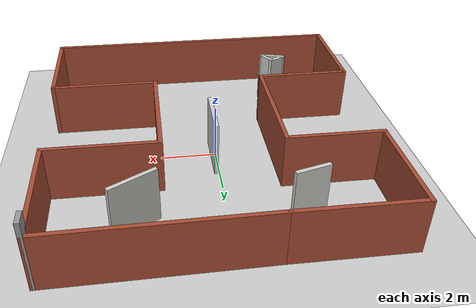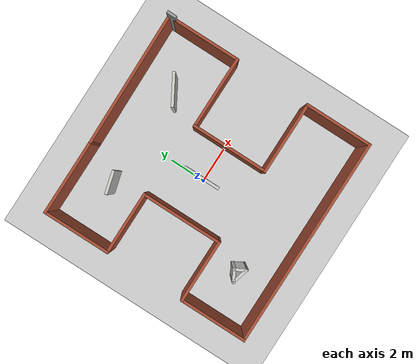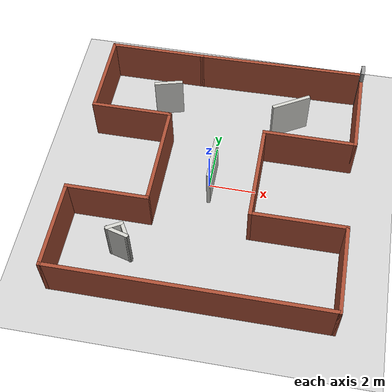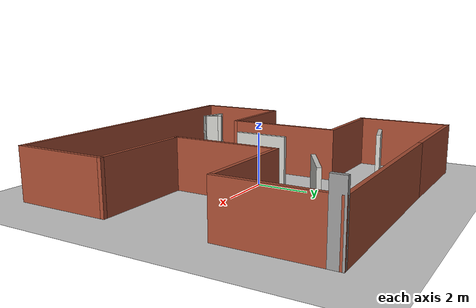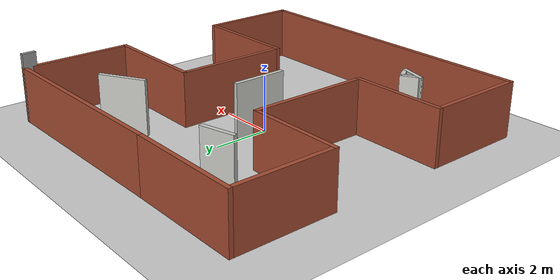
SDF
<sdf version="1.6">
 <world name="default">
  <light name="sun" type="directional">
   <pose>0 0 10 0 -0 0</pose>
   <diffuse>0.8 0.8 0.8 1</diffuse>
   <specular>0.2 0.2 0.2 1</specular>
   <attenuation>
    <range>1000</range>
    <constant>0.9</constant>
    <linear>0.01</linear>
    <quadratic>0.001</quadratic>
   </attenuation>
   <direction>-0.5 0.1 -0.9</direction>
  </light>
  <model name="ground_plane">
   <static>1</static>
   <link name="link">
    <collision name="collision">
     <geometry><plane><normal>0 0 1</normal><size>100 100</size></plane></geometry>
     <surface>
      <contact><collide_bitmask>65535</collide_bitmask></contact>
      <friction><ode><mu>100</mu><mu2>50</mu2></ode></friction>
     </surface>
    </collision>
    <visual name="visual">
     <cast_shadows>0</cast_shadows>
     <geometry><plane><normal>0 0 1</normal><size>100 100</size></plane></geometry>
     <material>
      <script><uri>file://media/materials/scripts/gazebo.material</uri><name>Gazebo/Grey</name></script>
     </material>
    </visual>
   </link>
  </model>
  <gravity>0 0 -9.8</gravity>
  <magnetic_field>6e-06 2.3e-05 -4.2e-05</magnetic_field>
  <atmosphere type="adiabatic"/>
  <physics name="default_physics" default="0" type="ode">
   <max_step_size>0.001</max_step_size>
   <real_time_factor>1</real_time_factor>
   <real_time_update_rate>1000</real_time_update_rate>
  </physics>
  <scene><ambient>0.4 0.4 0.4 1</ambient><background>0.7 0.7 0.7 1</background><shadows>1</shadows></scene>
  <audio><device>default</device></audio>
  <spherical_coordinates>
   <surface_model>EARTH_WGS84</surface_model>
   <latitude_deg>0</latitude_deg>
   <longitude_deg>0</longitude_deg>
   <elevation>0</elevation>
   <heading_deg>0</heading_deg>
  </spherical_coordinates>
  <model name="Ishape">
   <pose>0.223514 -0.055487 0 0 -0 0</pose>
   <link name="Wall_10">
    <collision name="Wall_10_Collision">
     <geometry><box><size>3.5 0.15 2</size></box></geometry>
     <pose>0 0 1 0 -0 0</pose>
    </collision>
    <visual name="Wall_10_Visual">
     <pose>0 0 1 0 -0 0</pose>
     <geometry><box><size>3.5 0.15 2</size></box></geometry>
     <material>
      <script><uri>file://media/materials/scripts/gazebo.material</uri><name>Gazebo/Bricks</name></script>
      <ambient>1 1 1 1</ambient>
     </material>
     <meta><layer>0</layer></meta>
    </visual>
    <pose>-4.00051 -2.22551 0 0 -0 3.14159</pose>
   </link>
   <link name="Wall_11">
    <collision name="Wall_11_Collision">
     <geometry><box><size>3.75 0.15 2</size></box></geometry>
     <pose>0 0 1 0 -0 0</pose>
    </collision>
    <visual name="Wall_11_Visual">
     <pose>0 0 1 0 -0 0</pose>
     <geometry><box><size>3.75 0.15 2</size></box></geometry>
     <material>
      <script><uri>file://media/materials/scripts/gazebo.material</uri><name>Gazebo/Bricks</name></script>
      <ambient>1 1 1 1</ambient>
     </material>
     <meta><layer>0</layer></meta>
    </visual>
    <pose>-5.67551 -4.02551 0 0 -0 -1.5708</pose>
   </link>
   <link name="Wall_12">
    <collision name="Wall_12_Collision">
     <geometry><box><size>11.5 0.15 2</size></box></geometry>
     <pose>0 0 1 0 -0 0</pose>
    </collision>
    <visual name="Wall_12_Visual">
     <pose>0 0 1 0 -0 0</pose>
     <geometry><box><size>11.5 0.15 2</size></box></geometry>
     <material>
      <script><uri>file://media/materials/scripts/gazebo.material</uri><name>Gazebo/Bricks</name></script>
      <ambient>1 1 1 1</ambient>
     </material>
     <meta><layer>0</layer></meta>
    </visual>
    <pose>-0.000514 -5.82551 0 0 -0 0</pose>
   </link>
   <link name="Wall_13">
    <collision name="Wall_13_Collision">
     <geometry><box><size>3.75 0.15 2</size></box></geometry>
     <pose>0 0 1 0 -0 0</pose>
    </collision>
    <visual name="Wall_13_Visual">
     <pose>0 0 1 0 -0 0</pose>
     <geometry><box><size>3.75 0.15 2</size></box></geometry>
     <material>
      <script><uri>file://media/materials/scripts/gazebo.material</uri><name>Gazebo/Bricks</name></script>
      <ambient>1 1 1 1</ambient>
     </material>
     <meta><layer>0</layer></meta>
    </visual>
    <pose>5.67449 -4.02551 0 0 -0 1.5708</pose>
   </link>
   <link name="Wall_14">
    <collision name="Wall_14_Collision">
     <geometry><box><size>4 0.15 2</size></box></geometry>
     <pose>0 0 1 0 -0 0</pose>
    </collision>
    <visual name="Wall_14_Visual">
     <pose>0 0 1 0 -0 0</pose>
     <geometry><box><size>4 0.15 2</size></box></geometry>
     <material>
      <script><uri>file://media/materials/scripts/gazebo.material</uri><name>Gazebo/Bricks</name></script>
      <ambient>1 1 1 1</ambient>
     </material>
     <meta><layer>0</layer></meta>
    </visual>
    <pose>3.74949 -2.22551 0 0 -0 3.14159</pose>
   </link>
   <link name="Wall_15">
    <collision name="Wall_15_Collision">
     <geometry><box><size>4.25 0.15 2</size></box></geometry>
     <pose>0 0 1 0 -0 0</pose>
    </collision>
    <visual name="Wall_15_Visual">
     <pose>0 0 1 0 -0 0</pose>
     <geometry><box><size>4.25 0.15 2</size></box></geometry>
     <material>
      <script><uri>file://media/materials/scripts/gazebo.material</uri><name>Gazebo/Bricks</name></script>
      <ambient>1 1 1 1</ambient>
     </material>
     <meta><layer>0</layer></meta>
    </visual>
    <pose>1.82449 -0.175513 0 0 -0 1.5708</pose>
   </link>
   <link name="Wall_16">
    <collision name="Wall_16_Collision">
     <geometry><box><size>4 0.15 2</size></box></geometry>
     <pose>0 0 1 0 -0 0</pose>
    </collision>
    <visual name="Wall_16_Visual">
     <pose>0 0 1 0 -0 0</pose>
     <geometry><box><size>4 0.15 2</size></box></geometry>
     <material>
      <script><uri>file://media/materials/scripts/gazebo.material</uri><name>Gazebo/Bricks</name></script>
      <ambient>1 1 1 1</ambient>
     </material>
     <meta><layer>0</layer></meta>
    </visual>
    <pose>3.74949 1.87449 0 0 -0 0</pose>
   </link>
   <link name="Wall_17">
    <collision name="Wall_17_Collision">
     <geometry><box><size>3.75 0.15 2</size></box></geometry>
     <pose>0 0 1 0 -0 0</pose>
    </collision>
    <visual name="Wall_17_Visual">
     <pose>0 0 1 0 -0 0</pose>
     <geometry><box><size>3.75 0.15 2</size></box></geometry>
     <material>
      <script><uri>file://media/materials/scripts/gazebo.material</uri><name>Gazebo/Bricks</name></script>
      <ambient>1 1 1 1</ambient>
     </material>
     <meta><layer>0</layer></meta>
    </visual>
    <pose>5.67449 3.67449 0 0 -0 1.5708</pose>
   </link>
   <link name="Wall_18">
    <collision name="Wall_18_Collision">
     <geometry><box><size>0.5 0.15 2.5</size></box></geometry>
     <pose>0 0 1.25 0 -0 0</pose>
    </collision>
    <visual name="Wall_18_Visual">
     <pose>0 0 1.25 0 -0 0</pose>
     <geometry><box><size>0.5 0.15 2.5</size></box></geometry>
     <material>
      <script><uri>file://media/materials/scripts/gazebo.material</uri><name>Gazebo/Grey</name></script>
      <ambient>1 1 1 1</ambient>
     </material>
     <meta><layer>0</layer></meta>
    </visual>
    <pose>5.67449 5.64949 0 0 -0 1.5708</pose>
   </link>
   <link name="Wall_19">
    <collision name="Wall_19_Collision">
     <geometry><box><size>7.40069 0.15 2</size></box></geometry>
     <pose>0 0 1 0 -0 0</pose>
    </collision>
    <visual name="Wall_19_Visual">
     <pose>0 0 1 0 -0 0</pose>
     <geometry><box><size>7.40069 0.15 2</size></box></geometry>
     <material>
      <script><uri>file://media/materials/scripts/gazebo.material</uri><name>Gazebo/Bricks</name></script>
      <ambient>1 1 1 1</ambient>
     </material>
     <meta><layer>0</layer></meta>
    </visual>
    <pose>2.04949 5.77449 0 0 -0 -3.1278</pose>
   </link>
   <link name="Wall_21">
    <collision name="Wall_21_Collision">
     <geometry><box><size>1.75 0.15 2</size></box></geometry>
     <pose>0 0 1 0 -0 0</pose>
    </collision>
    <visual name="Wall_21_Visual">
     <pose>0 0 1 0 -0 0</pose>
     <geometry><box><size>1.75 0.15 2</size></box></geometry>
     <material>
      <script><uri>file://media/materials/scripts/gazebo.material</uri><name>Gazebo/CeilingTiled</name></script>
      <ambient>1 1 1 1</ambient>
     </material>
     <meta><layer>0</layer></meta>
    </visual>
    <pose>2.75799 3.72349 0 0 -0 0.523799</pose>
   </link>
   <link name="Wall_23">
    <collision name="Wall_23_Collision">
     <geometry><box><size>1.25 0.15 2</size></box></geometry>
     <pose>0 0 1 0 -0 0</pose>
    </collision>
    <visual name="Wall_23_Visual">
     <pose>0 0 1 0 -0 0</pose>
     <geometry><box><size>1.25 0.15 2</size></box></geometry>
     <material>
      <script><uri>file://media/materials/scripts/gazebo.material</uri><name>Gazebo/CeilingTiled</name></script>
      <ambient>1 1 1 1</ambient>
     </material>
     <meta><layer>0</layer></meta>
    </visual>
    <pose>-2.74351 3.86999 0 0 -0 0.262184</pose>
   </link>
   <link name="Wall_25">
    <collision name="Wall_25_Collision">
     <geometry><box><size>2 0.15 2</size></box></geometry>
     <pose>0 0 1 0 -0 0</pose>
    </collision>
    <visual name="Wall_25_Visual">
     <pose>0 0 1 0 -0 0</pose>
     <geometry><box><size>2 0.15 2</size></box></geometry>
     <material>
      <script><uri>file://media/materials/scripts/gazebo.material</uri><name>Gazebo/CeilingTiled</name></script>
      <ambient>1 1 1 1</ambient>
     </material>
     <meta><layer>0</layer></meta>
    </visual>
    <pose>-0.119514 0.213487 0 0 -0 -1.5708</pose>
   </link>
   <link name="Wall_27">
    <collision name="Wall_27_Collision">
     <geometry><box><size>0.75 0.15 2</size></box></geometry>
     <pose>0 0 1 0 -0 0</pose>
    </collision>
    <visual name="Wall_27_Visual">
     <pose>0 0 1 0 -0 0</pose>
     <geometry><box><size>0.75 0.15 2</size></box></geometry>
     <material>
      <script><uri>file://media/materials/scripts/gazebo.material</uri><name>Gazebo/CeilingTiled</name></script>
      <ambient>1 1 1 1</ambient>
     </material>
     <meta><layer>0</layer></meta>
    </visual>
    <pose>-3.29201 -3.70451 0 0 -0 -2.61748</pose>
   </link>
   <link name="Wall_28">
    <collision name="Wall_28_Collision">
     <geometry><box><size>1 0.15 2</size></box></geometry>
     <pose>0 0 1 0 -0 0</pose>
    </collision>
    <visual name="Wall_28_Visual">
     <pose>0 0 1 0 -0 0</pose>
     <geometry><box><size>1 0.15 2</size></box></geometry>
     <material>
      <script><uri>file://media/materials/scripts/gazebo.material</uri><name>Gazebo/CeilingTiled</name></script>
      <ambient>1 1 1 1</ambient>
     </material>
     <meta><layer>0</layer></meta>
    </visual>
    <pose>-3.14101 -3.96451 0 0 -0 -0.261815</pose>
   </link>
   <link name="Wall_29">
    <collision name="Wall_29_Collision">
     <geometry><box><size>0.751042 0.15 2</size></box></geometry>
     <pose>0 0 1 0 -0 0</pose>
    </collision>
    <visual name="Wall_29_Visual">
     <pose>0 0 1 0 -0 0</pose>
     <geometry><box><size>0.751042 0.15 2</size></box></geometry>
     <material>
      <script><uri>file://media/materials/scripts/gazebo.material</uri><name>Gazebo/CeilingTiled</name></script>
      <ambient>1 1 1 1</ambient>
     </material>
     <meta><layer>0</layer></meta>
    </visual>
    <pose>-2.88151 -3.81451 0 0 -0 2.09696</pose>
   </link>
   <link name="Wall_6">
    <collision name="Wall_6_Collision">
     <geometry><box><size>4.25 0.15 2</size></box></geometry>
     <pose>0 0 1 0 -0 0</pose>
    </collision>
    <visual name="Wall_6_Visual">
     <pose>0 0 1 0 -0 0</pose>
     <geometry><box><size>4.25 0.15 2</size></box></geometry>
     <material>
      <script><uri>file://media/materials/scripts/gazebo.material</uri><name>Gazebo/Bricks</name></script>
      <ambient>1 1 1 1</ambient>
     </material>
     <meta><layer>0</layer></meta>
    </visual>
    <pose>-3.62551 5.72449 0 0 -0 3.14159</pose>
   </link>
   <link name="Wall_7">
    <collision name="Wall_7_Collision">
     <geometry><box><size>3.75 0.15 2</size></box></geometry>
     <pose>0 0 1 0 -0 0</pose>
    </collision>
    <visual name="Wall_7_Visual">
     <pose>0 0 1 0 -0 0</pose>
     <geometry><box><size>3.75 0.15 2</size></box></geometry>
     <material>
      <script><uri>file://media/materials/scripts/gazebo.material</uri><name>Gazebo/Bricks</name></script>
      <ambient>1 1 1 1</ambient>
     </material>
     <meta><layer>0</layer></meta>
    </visual>
    <pose>-5.67551 3.92449 0 0 -0 -1.5708</pose>
   </link>
   <link name="Wall_8">
    <collision name="Wall_8_Collision">
     <geometry><box><size>3.5 0.15 2</size></box></geometry>
     <pose>0 0 1 0 -0 0</pose>
    </collision>
    <visual name="Wall_8_Visual">
     <pose>0 0 1 0 -0 0</pose>
     <geometry><box><size>3.5 0.15 2</size></box></geometry>
     <material>
      <script><uri>file://media/materials/scripts/gazebo.material</uri><name>Gazebo/Bricks</name></script>
      <ambient>1 1 1 1</ambient>
     </material>
     <meta><layer>0</layer></meta>
    </visual>
    <pose>-4.00051 2.12449 0 0 -0 0</pose>
   </link>
   <link name="Wall_9">
    <collision name="Wall_9_Collision">
     <geometry><box><size>4.5 0.15 2</size></box></geometry>
     <pose>0 0 1 0 -0 0</pose>
    </collision>
    <visual name="Wall_9_Visual">
     <pose>0 0 1 0 -0 0</pose>
     <geometry><box><size>4.5 0.15 2</size></box></geometry>
     <material>
      <script><uri>file://media/materials/scripts/gazebo.material</uri><name>Gazebo/Bricks</name></script>
      <ambient>1 1 1 1</ambient>
     </material>
     <meta><layer>0</layer></meta>
    </visual>
    <pose>-2.32551 -0.050513 0 0 -0 -1.5708</pose>
   </link>
   <static>1</static>
  </model>
 </world>
</sdf>
